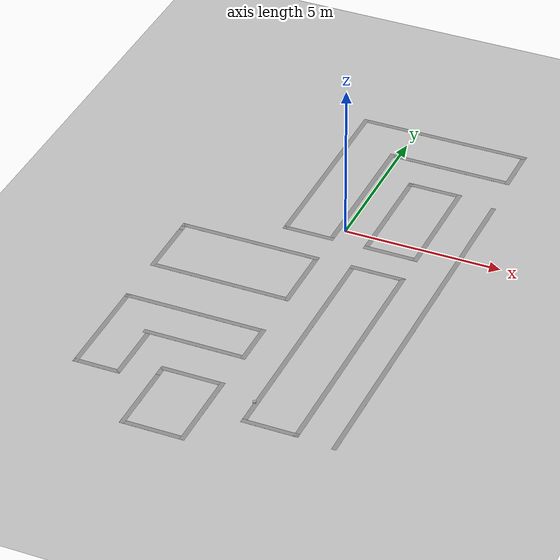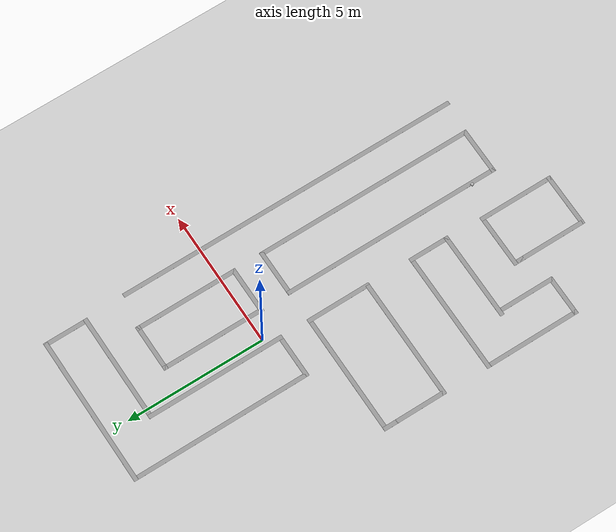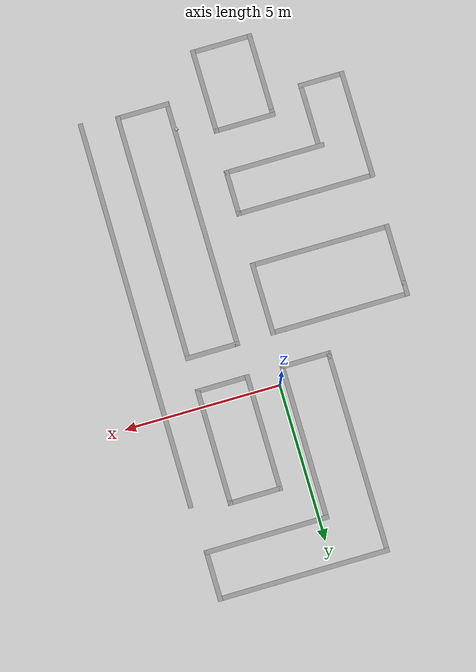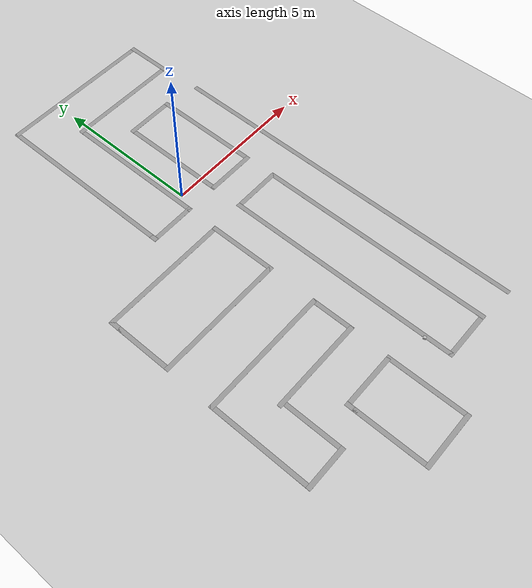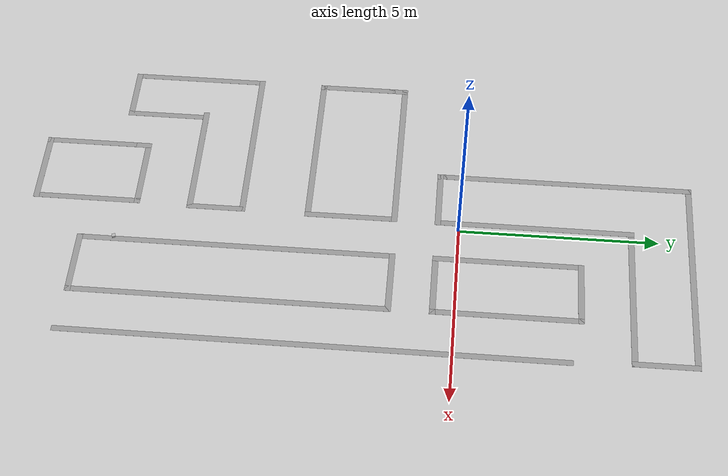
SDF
<sdf version="1.6">
 <world name="default">
  <model name="ground_plane">
   <static>1</static>
   <link name="link">
    <collision name="collision">
     <geometry><plane><normal>0 0 1</normal><size>100 100</size></plane></geometry>
     <surface>
      <contact><collide_bitmask>65535</collide_bitmask></contact>
      <friction><ode><mu>100</mu><mu2>50</mu2></ode></friction>
     </surface>
    </collision>
    <visual name="visual">
     <cast_shadows>0</cast_shadows>
     <geometry><plane><normal>0 0 1</normal><size>100 100</size></plane></geometry>
     <material>
      <script><uri>file://media/materials/scripts/gazebo.material</uri><name>Gazebo/Grey</name></script>
     </material>
    </visual>
   </link>
  </model>
  <model name="Untitled">
   <pose>-0.500001 -2.5 0 0 0 -1.57</pose>
   <link name="Wall_0">
    <collision name="Wall_0_Collision"><geometry><box><size>1.75 0.15 0.001</size></box></geometry></collision>
    <visual name="Wall_0_Visual">
     <geometry><box><size>1.75 0.15 0.001</size></box></geometry>
     <material>
      <script><uri>file://media/materials/scripts/gazebo.material</uri><name>Gazebo/Grey</name></script>
      <ambient>1 1 1 1</ambient>
     </material>
     <meta><layer>0</layer></meta>
    </visual>
    <pose>-1.96894 2.19842 0 0 -0 -1.5708</pose>
   </link>
   <link name="Wall_1">
    <collision name="Wall_1_Collision"><geometry><box><size>3.75 0.15 0.001</size></box></geometry></collision>
    <visual name="Wall_1_Visual">
     <geometry><box><size>3.75 0.15 0.001</size></box></geometry>
     <material>
      <script><uri>file://media/materials/scripts/gazebo.material</uri><name>Gazebo/Grey</name></script>
      <ambient>1 1 1 1</ambient>
     </material>
     <meta><layer>0</layer></meta>
    </visual>
    <pose>-3.76894 1.39842 0 0 -0 3.14159</pose>
   </link>
   <link name="Wall_10">
    <collision name="Wall_10_Collision"><geometry><box><size>1.75 0.15 0.001</size></box></geometry></collision>
    <visual name="Wall_10_Visual">
     <geometry><box><size>1.75 0.15 0.001</size></box></geometry>
     <material>
      <script><uri>file://media/materials/scripts/gazebo.material</uri><name>Gazebo/Grey</name></script>
      <ambient>1 1 1 1</ambient>
     </material>
     <meta><layer>0</layer></meta>
    </visual>
    <pose>6.95706 2.21142 0 0 -0 -1.5708</pose>
   </link>
   <link name="Wall_13">
    <collision name="Wall_13_Collision"><geometry><box><size>5 0.15 0.001</size></box></geometry></collision>
    <visual name="Wall_13_Visual">
     <geometry><box><size>5 0.15 0.001</size></box></geometry>
     <material>
      <script><uri>file://media/materials/scripts/gazebo.material</uri><name>Gazebo/Grey</name></script>
      <ambient>1 1 1 1</ambient>
     </material>
     <meta><layer>0</layer></meta>
    </visual>
    <pose>-4.39494 0.271425 0 0 -0 3.14159</pose>
   </link>
   <link name="Wall_16">
    <collision name="Wall_16_Collision"><geometry><box><size>4 0.15 0.001</size></box></geometry></collision>
    <visual name="Wall_16_Visual">
     <geometry><box><size>4 0.15 0.001</size></box></geometry>
     <material>
      <script><uri>file://media/materials/scripts/gazebo.material</uri><name>Gazebo/Grey</name></script>
      <ambient>1 1 1 1</ambient>
     </material>
     <meta><layer>0</layer></meta>
    </visual>
    <pose>-6.81994 2.19642 0 0 -0 1.5708</pose>
   </link>
   <link name="Wall_17">
    <collision name="Wall_17_Collision"><geometry><box><size>1.635 0.15 0.001</size></box></geometry></collision>
    <visual name="Wall_17_Visual">
     <geometry><box><size>1.635 0.15 0.001</size></box></geometry>
     <material>
      <script><uri>file://media/materials/scripts/gazebo.material</uri><name>Gazebo/Grey</name></script>
      <ambient>1 1 1 1</ambient>
     </material>
     <meta><layer>0</layer></meta>
    </visual>
    <pose>-7.56244 4.11992 0 0 -0 -3.13957</pose>
   </link>
   <link name="Wall_18">
    <collision name="Wall_18_Collision"><geometry><box><size>5.5 0.15 0.001</size></box></geometry></collision>
    <visual name="Wall_18_Visual">
     <geometry><box><size>5.5 0.15 0.001</size></box></geometry>
     <material>
      <script><uri>file://media/materials/scripts/gazebo.material</uri><name>Gazebo/Grey</name></script>
      <ambient>1 1 1 1</ambient>
     </material>
     <meta><layer>0</layer></meta>
    </visual>
    <pose>-8.30944 1.44342 0 0 -0 -1.57248</pose>
   </link>
   <link name="Wall_19">
    <collision name="Wall_19_Collision"><geometry><box><size>6.396 0.15 0.001</size></box></geometry></collision>
    <visual name="Wall_19_Visual">
     <geometry><box><size>6.396 0.15 0.001</size></box></geometry>
     <material>
      <script><uri>file://media/materials/scripts/gazebo.material</uri><name>Gazebo/Grey</name></script>
      <ambient>1 1 1 1</ambient>
     </material>
     <meta><layer>0</layer></meta>
    </visual>
    <pose>-5.19094 -1.23008 0 0 -0 0.00048</pose>
   </link>
   <link name="Wall_2">
    <collision name="Wall_2_Collision"><geometry><box><size>1.75 0.15 0.001</size></box></geometry></collision>
    <visual name="Wall_2_Visual">
     <geometry><box><size>1.75 0.15 0.001</size></box></geometry>
     <material>
      <script><uri>file://media/materials/scripts/gazebo.material</uri><name>Gazebo/Grey</name></script>
      <ambient>1 1 1 1</ambient>
     </material>
     <meta><layer>0</layer></meta>
    </visual>
    <pose>-5.56894 2.19842 0 0 -0 1.5708</pose>
   </link>
   <link name="Wall_20">
    <collision name="Wall_20_Collision"><geometry><box><size>0.25 0.15 0.001</size></box></geometry></collision>
    <visual name="Wall_20_Visual">
     <geometry><box><size>0.25 0.15 0.001</size></box></geometry>
     <material>
      <script><uri>file://media/materials/scripts/gazebo.material</uri><name>Gazebo/Grey</name></script>
      <ambient>1 1 1 1</ambient>
     </material>
     <meta><layer>0</layer></meta>
    </visual>
    <pose>-2.01794 -1.22857 0 0 -0 0</pose>
   </link>
   <link name="Wall_21">
    <collision name="Wall_21_Collision"><geometry><box><size>1.65 0.15 0.001</size></box></geometry></collision>
    <visual name="Wall_21_Visual">
     <geometry><box><size>1.65 0.15 0.001</size></box></geometry>
     <material>
      <script><uri>file://media/materials/scripts/gazebo.material</uri><name>Gazebo/Grey</name></script>
      <ambient>1 1 1 1</ambient>
     </material>
     <meta><layer>0</layer></meta>
    </visual>
    <pose>-1.96894 -0.478575 0 0 -0 1.57213</pose>
   </link>
   <link name="Wall_23">
    <collision name="Wall_23_Collision">
     <geometry><box><size>2.35234 0.15 0.001</size></box></geometry>
    </collision>
    <visual name="Wall_23_Visual">
     <geometry><box><size>2.35234 0.15 0.001</size></box></geometry>
     <material>
      <script><uri>file://media/materials/scripts/gazebo.material</uri><name>Gazebo/Grey</name></script>
      <ambient>1 1 1 1</ambient>
     </material>
     <meta><layer>0</layer></meta>
    </visual>
    <pose>0.233063 0.256924 0 0 -0 0.002271</pose>
   </link>
   <link name="Wall_24">
    <collision name="Wall_24_Collision">
     <geometry><box><size>4.50608 0.15 0.001</size></box></geometry>
    </collision>
    <visual name="Wall_24_Visual">
     <geometry><box><size>4.50608 0.15 0.001</size></box></geometry>
     <material>
      <script><uri>file://media/materials/scripts/gazebo.material</uri><name>Gazebo/Grey</name></script>
      <ambient>1 1 1 1</ambient>
     </material>
     <meta><layer>0</layer></meta>
    </visual>
    <pose>1.32956 -1.91858 0 0 -0 -1.57286</pose>
   </link>
   <link name="Wall_25">
    <collision name="Wall_25_Collision"><geometry><box><size>2 0.15 0.001</size></box></geometry></collision>
    <visual name="Wall_25_Visual">
     <geometry><box><size>2 0.15 0.001</size></box></geometry>
     <material>
      <script><uri>file://media/materials/scripts/gazebo.material</uri><name>Gazebo/Grey</name></script>
      <ambient>1 1 1 1</ambient>
     </material>
     <meta><layer>0</layer></meta>
    </visual>
    <pose>0.400063 -4.09657 0 0 -0 3.14159</pose>
   </link>
   <link name="Wall_28">
    <collision name="Wall_28_Collision"><geometry><box><size>4.5 0.15 0.001</size></box></geometry></collision>
    <visual name="Wall_28_Visual">
     <geometry><box><size>4.5 0.15 0.001</size></box></geometry>
     <material>
      <script><uri>file://media/materials/scripts/gazebo.material</uri><name>Gazebo/Grey</name></script>
      <ambient>1 1 1 1</ambient>
     </material>
     <meta><layer>0</layer></meta>
    </visual>
    <pose>-0.867937 -1.92057 0 0 -0 -1.5708</pose>
   </link>
   <link name="Wall_29">
    <collision name="Wall_29_Collision">
     <geometry><box><size>0.493001 0.15 0.001</size></box></geometry>
    </collision>
    <visual name="Wall_29_Visual">
     <geometry><box><size>0.493001 0.15 0.001</size></box></geometry>
     <material>
      <script><uri>file://media/materials/scripts/gazebo.material</uri><name>Gazebo/Grey</name></script>
      <ambient>1 1 1 1</ambient>
     </material>
     <meta><layer>0</layer></meta>
    </visual>
    <pose>-0.696437 -4.09608 0 0 -0 -0.002915</pose>
   </link>
   <link name="Wall_3">
    <collision name="Wall_3_Collision"><geometry><box><size>3.75 0.15 0.001</size></box></geometry></collision>
    <visual name="Wall_3_Visual">
     <geometry><box><size>3.75 0.15 0.001</size></box></geometry>
     <material>
      <script><uri>file://media/materials/scripts/gazebo.material</uri><name>Gazebo/Grey</name></script>
      <ambient>1 1 1 1</ambient>
     </material>
     <meta><layer>0</layer></meta>
    </visual>
    <pose>-3.76894 2.99842 0 0 -0 0</pose>
   </link>
   <link name="Wall_31">
    <collision name="Wall_31_Collision"><geometry><box><size>4.5 0.15 0.001</size></box></geometry></collision>
    <visual name="Wall_31_Visual">
     <geometry><box><size>4.5 0.15 0.001</size></box></geometry>
     <material>
      <script><uri>file://media/materials/scripts/gazebo.material</uri><name>Gazebo/Grey</name></script>
      <ambient>1 1 1 1</ambient>
     </material>
     <meta><layer>0</layer></meta>
    </visual>
    <pose>3.00606 -1.94657 0 0 -0 -1.5708</pose>
   </link>
   <link name="Wall_32">
    <collision name="Wall_32_Collision"><geometry><box><size>3.5 0.15 0.001</size></box></geometry></collision>
    <visual name="Wall_32_Visual">
     <geometry><box><size>3.5 0.15 0.001</size></box></geometry>
     <material>
      <script><uri>file://media/materials/scripts/gazebo.material</uri><name>Gazebo/Grey</name></script>
      <ambient>1 1 1 1</ambient>
     </material>
     <meta><layer>0</layer></meta>
    </visual>
    <pose>4.68106 -4.12157 0 0 -0 0</pose>
   </link>
   <link name="Wall_33">
    <collision name="Wall_33_Collision"><geometry><box><size>1.5 0.15 0.001</size></box></geometry></collision>
    <visual name="Wall_33_Visual">
     <geometry><box><size>1.5 0.15 0.001</size></box></geometry>
     <material>
      <script><uri>file://media/materials/scripts/gazebo.material</uri><name>Gazebo/Grey</name></script>
      <ambient>1 1 1 1</ambient>
     </material>
     <meta><layer>0</layer></meta>
    </visual>
    <pose>6.35606 -3.44658 0 0 -0 1.5708</pose>
   </link>
   <link name="Wall_34">
    <collision name="Wall_34_Collision"><geometry><box><size>2 0.15 0.001</size></box></geometry></collision>
    <visual name="Wall_34_Visual">
     <geometry><box><size>2 0.15 0.001</size></box></geometry>
     <material>
      <script><uri>file://media/materials/scripts/gazebo.material</uri><name>Gazebo/Grey</name></script>
      <ambient>1 1 1 1</ambient>
     </material>
     <meta><layer>0</layer></meta>
    </visual>
    <pose>5.43106 -2.77158 0 0 -0 3.14159</pose>
   </link>
   <link name="Wall_39">
    <collision name="Wall_39_Collision"><geometry><box><size>1.5 0.15 0.001</size></box></geometry></collision>
    <visual name="Wall_39_Visual">
     <geometry><box><size>1.5 0.15 0.001</size></box></geometry>
     <material>
      <script><uri>file://media/materials/scripts/gazebo.material</uri><name>Gazebo/Grey</name></script>
      <ambient>1 1 1 1</ambient>
     </material>
     <meta><layer>0</layer></meta>
    </visual>
    <pose>3.68106 0.228424 0 0 -0 0</pose>
   </link>
   <link name="Wall_40">
    <collision name="Wall_40_Collision"><geometry><box><size>3.25 0.15 0.001</size></box></geometry></collision>
    <visual name="Wall_40_Visual">
     <geometry><box><size>3.25 0.15 0.001</size></box></geometry>
     <material>
      <script><uri>file://media/materials/scripts/gazebo.material</uri><name>Gazebo/Grey</name></script>
      <ambient>1 1 1 1</ambient>
     </material>
     <meta><layer>0</layer></meta>
    </visual>
    <pose>4.35606 -1.32157 0 0 -0 -1.5708</pose>
   </link>
   <link name="Wall_42">
    <collision name="Wall_42_Collision"><geometry><box><size>2.75 0.15 0.001</size></box></geometry></collision>
    <visual name="Wall_42_Visual">
     <geometry><box><size>2.75 0.15 0.001</size></box></geometry>
     <material>
      <script><uri>file://media/materials/scripts/gazebo.material</uri><name>Gazebo/Grey</name></script>
      <ambient>1 1 1 1</ambient>
     </material>
     <meta><layer>0</layer></meta>
    </visual>
    <pose>7.01406 0.172425 0 0 -0 0</pose>
   </link>
   <link name="Wall_43">
    <collision name="Wall_43_Collision"><geometry><box><size>2 0.15 0.001</size></box></geometry></collision>
    <visual name="Wall_43_Visual">
     <geometry><box><size>2 0.15 0.001</size></box></geometry>
     <material>
      <script><uri>file://media/materials/scripts/gazebo.material</uri><name>Gazebo/Grey</name></script>
      <ambient>1 1 1 1</ambient>
     </material>
     <meta><layer>0</layer></meta>
    </visual>
    <pose>8.31406 -0.752576 0 0 -0 -1.5708</pose>
   </link>
   <link name="Wall_44">
    <collision name="Wall_44_Collision"><geometry><box><size>2.5 0.15 0.001</size></box></geometry></collision>
    <visual name="Wall_44_Visual">
     <geometry><box><size>2.5 0.15 0.001</size></box></geometry>
     <material>
      <script><uri>file://media/materials/scripts/gazebo.material</uri><name>Gazebo/Grey</name></script>
      <ambient>1 1 1 1</ambient>
     </material>
     <meta><layer>0</layer></meta>
    </visual>
    <pose>7.13906 -1.67758 0 0 -0 3.14159</pose>
   </link>
   <link name="Wall_47">
    <collision name="Wall_47_Collision"><geometry><box><size>2 0.15 0.001</size></box></geometry></collision>
    <visual name="Wall_47_Visual">
     <geometry><box><size>2 0.15 0.001</size></box></geometry>
     <material>
      <script><uri>file://media/materials/scripts/gazebo.material</uri><name>Gazebo/Grey</name></script>
      <ambient>1 1 1 1</ambient>
     </material>
     <meta><layer>0</layer></meta>
    </visual>
    <pose>5.71406 -0.752576 0 0 -0 -1.5708</pose>
   </link>
   <link name="Wall_48">
    <collision name="Wall_48_Collision"><geometry><box><size>0.4 0.15 0.001</size></box></geometry></collision>
    <visual name="Wall_48_Visual">
     <geometry><box><size>0.4 0.15 0.001</size></box></geometry>
     <material>
      <script><uri>file://media/materials/scripts/gazebo.material</uri><name>Gazebo/Grey</name></script>
      <ambient>1 1 1 1</ambient>
     </material>
     <meta><layer>0</layer></meta>
    </visual>
    <pose>5.83906 -1.67758 0 0 -0 0</pose>
   </link>
   <link name="Wall_6">
    <collision name="Wall_6_Collision"><geometry><box><size>8 0.15 0.001</size></box></geometry></collision>
    <visual name="Wall_6_Visual">
     <geometry><box><size>8 0.15 0.001</size></box></geometry>
     <material>
      <script><uri>file://media/materials/scripts/gazebo.material</uri><name>Gazebo/Grey</name></script>
      <ambient>1 1 1 1</ambient>
     </material>
     <meta><layer>0</layer></meta>
    </visual>
    <pose>3.03206 1.41142 0 0 -0 0</pose>
   </link>
   <link name="Wall_8">
    <collision name="Wall_8_Collision"><geometry><box><size>1.75 0.15 0.001</size></box></geometry></collision>
    <visual name="Wall_8_Visual">
     <geometry><box><size>1.75 0.15 0.001</size></box></geometry>
     <material>
      <script><uri>file://media/materials/scripts/gazebo.material</uri><name>Gazebo/Grey</name></script>
      <ambient>1 1 1 1</ambient>
     </material>
     <meta><layer>0</layer></meta>
    </visual>
    <pose>-0.892937 2.21142 0 0 -0 1.5708</pose>
   </link>
   <link name="Wall_9">
    <collision name="Wall_9_Collision"><geometry><box><size>8 0.15 0.001</size></box></geometry></collision>
    <visual name="Wall_9_Visual">
     <geometry><box><size>8 0.15 0.001</size></box></geometry>
     <material>
      <script><uri>file://media/materials/scripts/gazebo.material</uri><name>Gazebo/Grey</name></script>
      <ambient>1 1 1 1</ambient>
     </material>
     <meta><layer>0</layer></meta>
    </visual>
    <pose>3.03206 3.01142 0 0 -0 0</pose>
   </link>
   <static>1</static>
  </model>
  <model name="add1">
   <pose>3.699 -3.367 0 0 -0 0</pose>
   <link name="Wall_4">
    <collision name="Wall_4_Collision">
     <geometry><box><size>12.5 0.15 0.001</size></box></geometry>
     <pose>0 0 0.0005 0 -0 0</pose>
    </collision>
    <visual name="Wall_4_Visual">
     <pose>0 0 0.0005 0 -0 0</pose>
     <geometry><box><size>12.5 0.15 0.001</size></box></geometry>
     <material>
      <script><uri>file://media/materials/scripts/gazebo.material</uri><name>Gazebo/Grey</name></script>
      <ambient>1 1 1 1</ambient>
     </material>
     <meta><layer>0</layer></meta>
    </visual>
    <pose>0 -0 0 0 -0 -1.5708</pose>
   </link>
   <static>1</static>
  </model>
  <model name="tag2_0">
   <link name="link_1">
    <inertial>
     <mass>1</mass>
     <inertia>
      <ixx>0.166667</ixx>
      <ixy>0</ixy>
      <ixz>0</ixz>
      <iyy>0.166667</iyy>
      <iyz>0</iyz>
      <izz>0.166667</izz>
     </inertia>
    </inertial>
    <pose>1.08786 -0.9078 0 0 -0 0</pose>
    <visual name="visual">
     <geometry>
      <mesh><uri>/home/jia/Downloads/qq-files/1007426372/file_recv/tag2.dae</uri><scale>1 1 1</scale></mesh>
     </geometry>
    </visual>
    <collision name="collision">
     <geometry>
      <mesh><uri>/home/jia/Downloads/qq-files/1007426372/file_recv/tag2.dae</uri><scale>1 1 1</scale></mesh>
     </geometry>
     <surface>
      <friction>
       <ode><mu>1</mu><mu2>1</mu2><fdir1>0 0 0</fdir1><slip1>0</slip1><slip2>0</slip2></ode>
       <torsional>
        <coefficient>1</coefficient>
        <patch_radius>0</patch_radius>
        <surface_radius>0</surface_radius>
        <use_patch_radius>1</use_patch_radius>
        <ode><slip>0</slip></ode>
       </torsional>
      </friction>
      <bounce><restitution_coefficient>0</restitution_coefficient><threshold>1e+06</threshold></bounce>
      <contact>
       <collide_without_contact>0</collide_without_contact>
       <collide_without_contact_bitmask>1</collide_without_contact_bitmask>
       <collide_bitmask>1</collide_bitmask>
       <ode>
        <soft_cfm>0</soft_cfm>
        <soft_erp>0.2</soft_erp>
        <kp>1e+13</kp>
        <kd>1</kd>
        <max_vel>0.01</max_vel>
        <min_depth>0</min_depth>
       </ode>
       <bullet>
        <split_impulse>1</split_impulse>
        <split_impulse_penetration_threshold>-0.01</split_impulse_penetration_threshold>
        <soft_cfm>0</soft_cfm>
        <soft_erp>0.2</soft_erp>
        <kp>1e+13</kp>
        <kd>1</kd>
       </bullet>
      </contact>
     </surface>
    </collision>
   </link>
   <static>0</static>
   <pose>-0.491563 -8.15673 0.005492 0 -7e-06 0.373739</pose>
  </model>
 </world>
</sdf>
